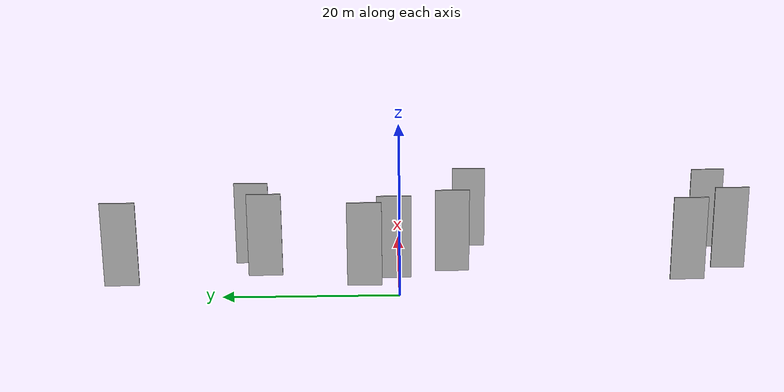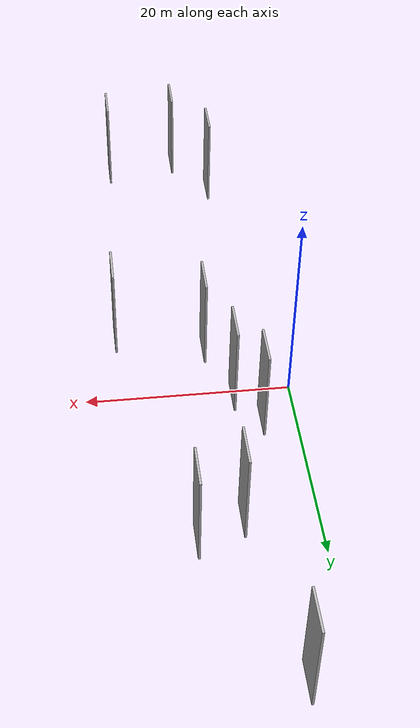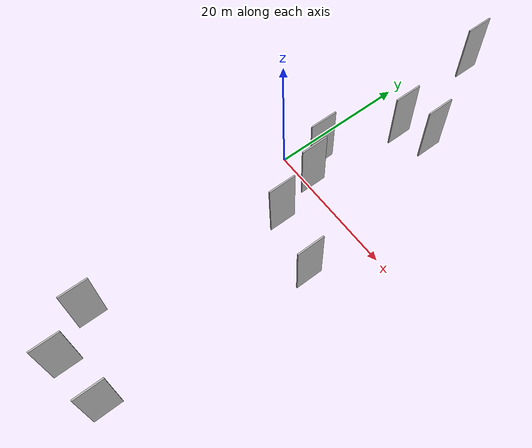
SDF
<sdf version="1.6">
 <world name="default">
  <scene>
   <sky><clouds><speed>12</speed></clouds></sky>
   <ambient>0.4 0.4 0.4 1</ambient>
   <background>0.7 0.7 0.7 1</background>
   <shadows>1</shadows>
  </scene>
  <gravity>0 0 -9.8066</gravity>
  <magnetic_field>6e-06 2.3e-05 -4.2e-05</magnetic_field>
  <physics default="0" name="default_physics" type="ode">
   <ode>
    <solver>
     <type>quick</type>
     <iters>10</iters>
     <sor>1.0</sor>
     <use_dynamic_moi_rescaling>0</use_dynamic_moi_rescaling>
    </solver>
    <constraints>
     <cfm>0</cfm>
     <erp>0.2</erp>
     <contact_max_correcting_vel>100</contact_max_correcting_vel>
     <contact_surface_layer>0.001</contact_surface_layer>
    </constraints>
   </ode>
   <max_step_size>0.004</max_step_size>
   <real_time_factor>1</real_time_factor>
   <real_time_update_rate>250</real_time_update_rate>
  </physics>
  <light name="sun" type="directional">
   <pose>0 0 10 0 0 0</pose>
   <diffuse>0.8 0.8 0.8 1</diffuse>
   <specular>0.2 0.2 0.2 1</specular>
   <attenuation>
    <range>1000</range>
    <constant>0.9</constant>
    <linear>0.01</linear>
    <quadratic>0.001</quadratic>
   </attenuation>
   <direction>-0.5 0.1 -0.9</direction>
  </light>
  <model name="grey_wall_1">
   <static>1</static>
   <pose>11.1592 17.5524 0.0 0.000000 0.000000 1.570796</pose>
   <link name="link">
    <pose>0 0 5.00 0 0 0</pose>
    <collision name="collision"><geometry><box><size>4.00 0.2 10.00</size></box></geometry></collision>
    <visual name="visual">
     <cast_shadows>0</cast_shadows>
     <geometry><box><size>4.00 0.2 10.00</size></box></geometry>
     <material>
      <script>
       <uri>model://HANNAS_wall/materials/scripts</uri>
       <uri>model://HANNAS_wall/materials/textures</uri>
       <name>vrc/HANNAS_wall</name>
      </script>
     </material>
    </visual>
   </link>
  </model>
  <model name="grey_wall_2">
   <static>1</static>
   <pose>7.8093 -39.2581 0.0 0.000000 0.000000 1.570796</pose>
   <link name="link">
    <pose>0 0 5.00 0 0 0</pose>
    <collision name="collision"><geometry><box><size>4.00 0.2 10.00</size></box></geometry></collision>
    <visual name="visual">
     <cast_shadows>0</cast_shadows>
     <geometry><box><size>4.00 0.2 10.00</size></box></geometry>
     <material>
      <script>
       <uri>model://HANNAS_wall/materials/scripts</uri>
       <uri>model://HANNAS_wall/materials/textures</uri>
       <name>vrc/HANNAS_wall</name>
      </script>
     </material>
    </visual>
   </link>
  </model>
  <model name="grey_wall_3">
   <static>1</static>
   <pose>5.6943 0.5910 0.0 0.000000 0.000000 1.570796</pose>
   <link name="link">
    <pose>0 0 5.00 0 0 0</pose>
    <collision name="collision"><geometry><box><size>4.00 0.2 10.00</size></box></geometry></collision>
    <visual name="visual">
     <cast_shadows>0</cast_shadows>
     <geometry><box><size>4.00 0.2 10.00</size></box></geometry>
     <material>
      <script>
       <uri>model://HANNAS_wall/materials/scripts</uri>
       <uri>model://HANNAS_wall/materials/textures</uri>
       <name>vrc/HANNAS_wall</name>
      </script>
     </material>
    </visual>
   </link>
  </model>
  <model name="grey_wall_4">
   <static>1</static>
   <pose>3.3394 4.0033 0.0 0.000000 0.000000 1.570796</pose>
   <link name="link">
    <pose>0 0 5.00 0 0 0</pose>
    <collision name="collision"><geometry><box><size>4.00 0.2 10.00</size></box></geometry></collision>
    <visual name="visual">
     <cast_shadows>0</cast_shadows>
     <geometry><box><size>4.00 0.2 10.00</size></box></geometry>
     <material>
      <script>
       <uri>model://HANNAS_wall/materials/scripts</uri>
       <uri>model://HANNAS_wall/materials/textures</uri>
       <name>vrc/HANNAS_wall</name>
      </script>
     </material>
    </visual>
   </link>
  </model>
  <model name="grey_wall_5">
   <static>1</static>
   <pose>6.8666 15.6993 0.0 0.000000 0.000000 1.570796</pose>
   <link name="link">
    <pose>0 0 5.00 0 0 0</pose>
    <collision name="collision"><geometry><box><size>4.00 0.2 10.00</size></box></geometry></collision>
    <visual name="visual">
     <cast_shadows>0</cast_shadows>
     <geometry><box><size>4.00 0.2 10.00</size></box></geometry>
     <material>
      <script>
       <uri>model://HANNAS_wall/materials/scripts</uri>
       <uri>model://HANNAS_wall/materials/textures</uri>
       <name>vrc/HANNAS_wall</name>
      </script>
     </material>
    </visual>
   </link>
  </model>
  <model name="grey_wall_6">
   <static>1</static>
   <pose>15.3389 -38.0255 0.0 0.000000 0.000000 1.570796</pose>
   <link name="link">
    <pose>0 0 5.00 0 0 0</pose>
    <collision name="collision"><geometry><box><size>4.00 0.2 10.00</size></box></geometry></collision>
    <visual name="visual">
     <cast_shadows>0</cast_shadows>
     <geometry><box><size>4.00 0.2 10.00</size></box></geometry>
     <material>
      <script>
       <uri>model://HANNAS_wall/materials/scripts</uri>
       <uri>model://HANNAS_wall/materials/textures</uri>
       <name>vrc/HANNAS_wall</name>
      </script>
     </material>
    </visual>
   </link>
  </model>
  <model name="grey_wall_7">
   <static>1</static>
   <pose>7.7769 -6.2875 0.0 0.000000 0.000000 1.570796</pose>
   <link name="link">
    <pose>0 0 5.00 0 0 0</pose>
    <collision name="collision"><geometry><box><size>4.00 0.2 10.00</size></box></geometry></collision>
    <visual name="visual">
     <cast_shadows>0</cast_shadows>
     <geometry><box><size>4.00 0.2 10.00</size></box></geometry>
     <material>
      <script>
       <uri>model://HANNAS_wall/materials/scripts</uri>
       <uri>model://HANNAS_wall/materials/textures</uri>
       <name>vrc/HANNAS_wall</name>
      </script>
     </material>
    </visual>
   </link>
  </model>
  <model name="grey_wall_8">
   <static>1</static>
   <pose>4.1202 -33.6517 0.0 0.000000 0.000000 1.570796</pose>
   <link name="link">
    <pose>0 0 5.00 0 0 0</pose>
    <collision name="collision"><geometry><box><size>4.00 0.2 10.00</size></box></geometry></collision>
    <visual name="visual">
     <cast_shadows>0</cast_shadows>
     <geometry><box><size>4.00 0.2 10.00</size></box></geometry>
     <material>
      <script>
       <uri>model://HANNAS_wall/materials/scripts</uri>
       <uri>model://HANNAS_wall/materials/textures</uri>
       <name>vrc/HANNAS_wall</name>
      </script>
     </material>
    </visual>
   </link>
  </model>
  <model name="grey_wall_9">
   <static>1</static>
   <pose>4.0133 32.0273 0.0 0.000000 0.000000 1.570796</pose>
   <link name="link">
    <pose>0 0 5.00 0 0 0</pose>
    <collision name="collision"><geometry><box><size>4.00 0.2 10.00</size></box></geometry></collision>
    <visual name="visual">
     <cast_shadows>0</cast_shadows>
     <geometry><box><size>4.00 0.2 10.00</size></box></geometry>
     <material>
      <script>
       <uri>model://HANNAS_wall/materials/scripts</uri>
       <uri>model://HANNAS_wall/materials/textures</uri>
       <name>vrc/HANNAS_wall</name>
      </script>
     </material>
    </visual>
   </link>
  </model>
  <model name="grey_wall_10">
   <static>1</static>
   <pose>16.5703 -8.6954 0.0 0.000000 0.000000 1.570796</pose>
   <link name="link">
    <pose>0 0 5.00 0 0 0</pose>
    <collision name="collision"><geometry><box><size>4.00 0.2 10.00</size></box></geometry></collision>
    <visual name="visual">
     <cast_shadows>0</cast_shadows>
     <geometry><box><size>4.00 0.2 10.00</size></box></geometry>
     <material>
      <script>
       <uri>model://HANNAS_wall/materials/scripts</uri>
       <uri>model://HANNAS_wall/materials/textures</uri>
       <name>vrc/HANNAS_wall</name>
      </script>
     </material>
    </visual>
   </link>
  </model>
 </world>
</sdf>
